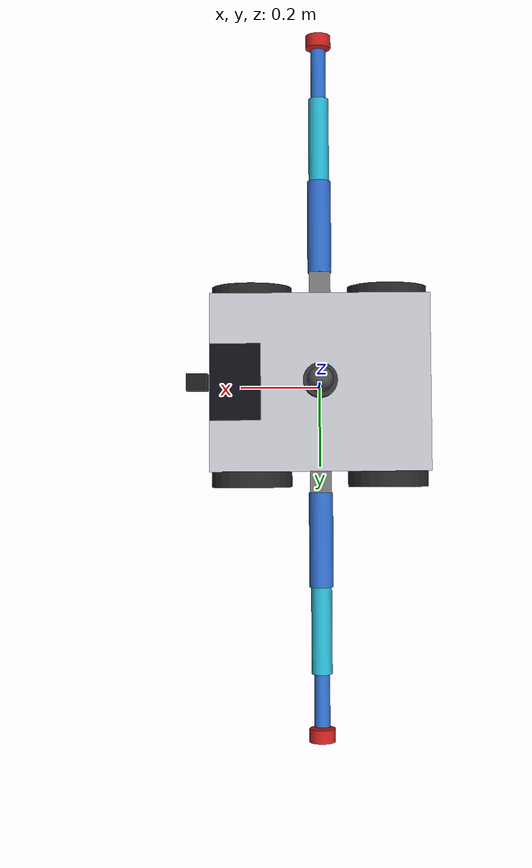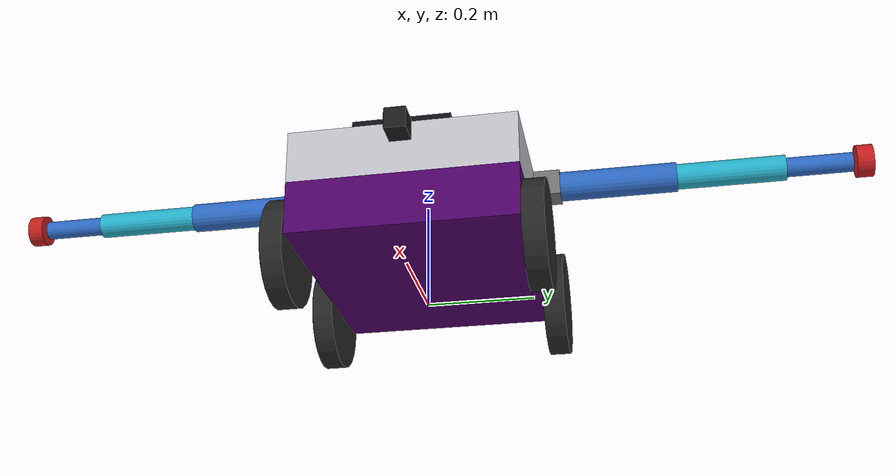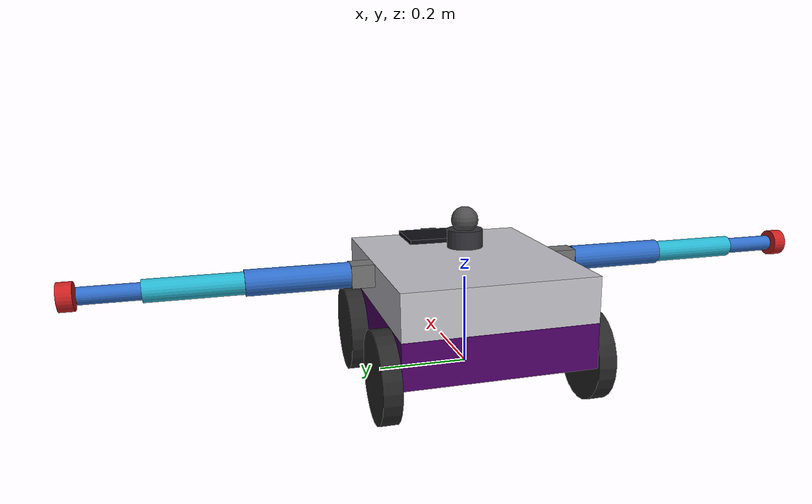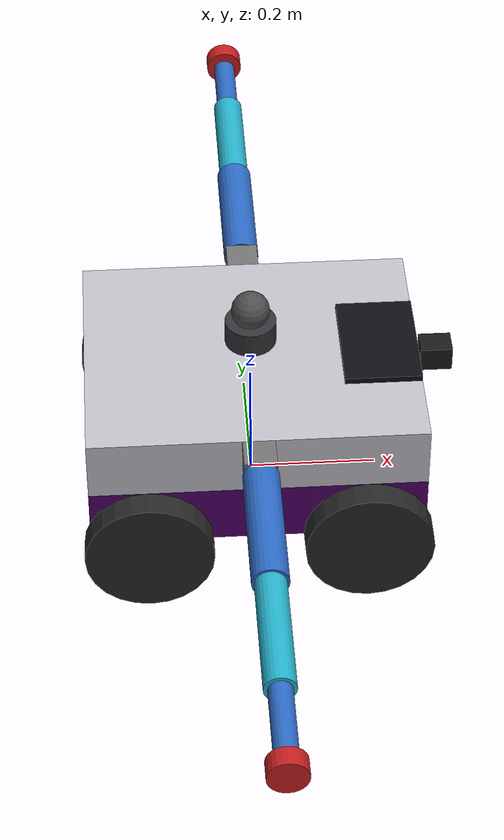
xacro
<?xml version='1.0'?>
<robot xmlns:xacro="http://www.ros.org/wiki/xacro" name="robot_model">

	<xacro:include filename="car_constants.xacro"/>
	<xacro:include filename="inertial_macros.xacro"/>
	<xacro:include filename="robot_chasis.xacro"/>
	<xacro:include filename="torso.xacro"/>
	<xacro:include filename="gazebo.xacro"/>
	<xacro:include filename="arms.xacro"/>
	<xacro:include filename="sensors.xacro"/>
	<xacro:include filename="controller.xacro"/>
	<xacro:robot_chassis/>
	<xacro:torso parent="chassis-link"/>
	<xacro:left_arm parent="torso_link"/>
	<xacro:right_arm parent="torso_link"/>
	<xacro:robot_sensors parent="torso_link"/>
	<xacro:robot_control/>
	<xacro:gazebo_extensions/>

</robot>

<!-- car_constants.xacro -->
<robot xmlns:xacro ="http://www.ros.org/wiki/xacro" >
	<xacro:property name="chassis_length" value="0.52" />
	<xacro:property name="chassis_width" value="0.42" />
	<xacro:property name="chassis_height" value="0.1" />
	<xacro:property name="chassis_mass" value="3.5" />

	<xacro:property name="wheel_radius" value="0.10" />
	<xacro:property name="wheel_width" value="0.04" />
	<xacro:property name="wheel_mass" value="0.8" />
	<xacro:property name="wheel_x_offset" value="0.17" />
	<xacro:property name="wheel_y_offset" value="0.23" />

	<xacro:property name="torso_length" value="0.52" />
	<xacro:property name="torso_width" value="0.42" />
	<xacro:property name="torso_height" value="0.1" />
	<xacro:property name="torso_mass" value="6.0" />
	<xacro:property name="torso_z_offset" value="${chassis_height / 2.0 + torso_height / 2.0}" />

	<xacro:property name="face_panel_length" value="0.01" />
	<xacro:property name="face_panel_width" value="0.18" />
	<xacro:property name="face_panel_height" value="0.12" />
	<xacro:property name="face_panel_mass" value="0.2" />
</robot>

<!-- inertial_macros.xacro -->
<robot xmlns:xacro="http://www.ros.org/wiki/xacro">

  <!-- Material densities in kg/m^3 -->
  <xacro:property name="steel_density" value="7850.0"/>
  <xacro:property name="aluminum_density" value="2700.0"/>
  <xacro:property name="plastic_density" value="1200.0"/>
  <xacro:property name="rubber_density" value="1100.0"/>

  <!-- Solid box inertial from density and box dimensions -->
  <xacro:macro name="box_inertial_from_density" params="l w h density origin_xyz:='0 0 0' origin_rpy:='0 0 0'">
    <xacro:property name="mass" value="${density * l * w * h}"/>
    <inertial>
      <origin xyz="${origin_xyz}" rpy="${origin_rpy}"/>
      <mass value="${mass}"/>
      <inertia
        ixx="${mass * (w*w + h*h) / 12.0}"
        ixy="0.0"
        ixz="0.0"
        iyy="${mass * (l*l + h*h) / 12.0}"
        iyz="0.0"
        izz="${mass * (l*l + w*w) / 12.0}"/>
    </inertial>
  </xacro:macro>

  <!-- Solid box inertial from an explicit mass and box dimensions -->
  <xacro:macro name="box_inertial_from_mass" params="l w h mass origin_xyz:='0 0 0' origin_rpy:='0 0 0'">
    <inertial>
      <origin xyz="${origin_xyz}" rpy="${origin_rpy}"/>
      <mass value="${mass}"/>
      <inertia
        ixx="${mass * (w*w + h*h) / 12.0}"
        ixy="0.0"
        ixz="0.0"
        iyy="${mass * (l*l + h*h) / 12.0}"
        iyz="0.0"
        izz="${mass * (l*l + w*w) / 12.0}"/>
    </inertial>
  </xacro:macro>

  <!-- Solid cylinder inertial from density and cylinder dimensions -->
  <xacro:macro name="cylinder_inertial_from_density" params="radius length density origin_xyz:='0 0 0' origin_rpy:='0 0 0'">
    <xacro:property name="mass" value="${density * 3.141592653589793 * radius * radius * length}"/>
    <inertial>
      <origin xyz="${origin_xyz}" rpy="${origin_rpy}"/>
      <mass value="${mass}"/>
      <inertia
        ixx="${mass * (3.0 * radius * radius + length * length) / 12.0}"
        ixy="0.0"
        ixz="0.0"
        iyy="${mass * (3.0 * radius * radius + length * length) / 12.0}"
        iyz="0.0"
        izz="${0.5 * mass * radius * radius}"/>
    </inertial>
  </xacro:macro>

  <!-- Solid cylinder inertial from an explicit mass and cylinder dimensions -->
  <xacro:macro name="cylinder_inertial_from_mass" params="radius length mass origin_xyz:='0 0 0' origin_rpy:='0 0 0'">
    <inertial>
      <origin xyz="${origin_xyz}" rpy="${origin_rpy}"/>
      <mass value="${mass}"/>
      <inertia
        ixx="${mass * (3.0 * radius * radius + length * length) / 12.0}"
        ixy="0.0"
        ixz="0.0"
        iyy="${mass * (3.0 * radius * radius + length * length) / 12.0}"
        iyz="0.0"
        izz="${0.5 * mass * radius * radius}"/>
    </inertial>
  </xacro:macro>

</robot>

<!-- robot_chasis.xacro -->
<robot xmlns:xacro ="http://www.ros.org/wiki/xacro" name="robot_chasis">
	<xacro:macro name="drive_wheel" params="name x y">
		<link name="${name}_link">
			<visual>
				<origin xyz="0 0 0" rpy="1.5708 0 0" />
				<geometry>
					<cylinder radius="${wheel_radius}" length="${wheel_width}" />
				</geometry>
				<material name="dark_grey">
					<color rgba="0.15 0.15 0.15 1.0"/>
				</material>
			</visual>
			<collision>
				<origin xyz="0 0 0" rpy="1.5708 0 0" />
				<geometry>
					<cylinder radius="${wheel_radius}" length="${wheel_width}" />
				</geometry>
			</collision>
			<xacro:cylinder_inertial_from_mass
				radius="${wheel_radius}"
				length="${wheel_width}"
				mass="${wheel_mass}"
				origin_xyz="0 0 0"
				origin_rpy="1.5708 0 0" />
		</link>

		<joint name="${name}_joint" type="continuous">
			<parent link="chassis-link"/>
			<child link="${name}_link"/>
			<origin xyz="${x} ${y} ${-chassis_height / 2.0}" rpy="0 0 0" />
			<axis xyz="0 1 0"/>
			<dynamics damping="0.2" friction="0.1"/>
			<limit effort="20.0" velocity="15.0"/>
		</joint>
	</xacro:macro>

	<xacro:macro name="robot_chassis" params="">
		<link name="base_link"/>

		<link name="chassis-link">
			<visual>
				<origin xyz="0 0 0" rpy="0 0 0" />
				<geometry>
					<box size="${chassis_length} ${chassis_width} ${chassis_height}" />
				</geometry>
				<material name="brown">
					<color rgba="0.3 0 0.4 1"/>
				</material>
			</visual>
			<collision>
				<origin xyz="0 0 0" rpy="0 0 0" />
				<geometry>
					<box size="${chassis_length} ${chassis_width} ${chassis_height}" />
				</geometry>
			</collision>
			<xacro:box_inertial_from_mass
				l="${chassis_length}"
				w="${chassis_width}"
				h="${chassis_height}"
				mass="${chassis_mass}" />
		</link>

		<joint name="joint-base-chassis" type="fixed">
			<parent link="base_link"/>
			<child link="chassis-link"/>
			<origin xyz="0 0 ${wheel_radius}" rpy="0 0 0" />
		</joint>

		<xacro:drive_wheel name="front_left_wheel"  x="${ wheel_x_offset}" y="${ wheel_y_offset}"/>
		<xacro:drive_wheel name="front_right_wheel" x="${ wheel_x_offset}" y="${-wheel_y_offset}"/>
		<xacro:drive_wheel name="rear_left_wheel"   x="${-wheel_x_offset}" y="${ wheel_y_offset}"/>
		<xacro:drive_wheel name="rear_right_wheel"  x="${-wheel_x_offset}" y="${-wheel_y_offset}"/>
	</xacro:macro>
</robot>

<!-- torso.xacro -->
<robot xmlns:xacro="http://www.ros.org/wiki/xacro">

	<xacro:macro name="torso" params="parent">
		<link name="torso_link">
			<visual>
				<origin xyz="0 0 0" rpy="0 0 0" />
				<geometry>
					<box size="${torso_length} ${torso_width} ${torso_height}" />
				</geometry>
				<material name="silver">
					<color rgba="0.75 0.75 0.78 1.0"/>
				</material>
			</visual>
			<collision>
				<origin xyz="0 0 0" rpy="0 0 0" />
				<geometry>
					<box size="${torso_length} ${torso_width} ${torso_height}" />
				</geometry>
			</collision>
			<xacro:box_inertial_from_mass
				l="${torso_length}"
				w="${torso_width}"
				h="${torso_height}"
				mass="${torso_mass}" />
		</link>

		<joint name="torso_joint" type="fixed">
			<parent link="${parent}"/>
			<child link="torso_link"/>
			<origin xyz="0 0 ${torso_z_offset}" rpy="0 0 0" />
		</joint>

		<link name="face_panel_link">
			<visual>
				<origin xyz="${torso_length / 2.0 - face_panel_height / 2.0} 0 ${torso_height / 2.0 + face_panel_length / 2.0}" rpy="0 0 0" />
				<geometry>
					<box size="${face_panel_height} ${face_panel_width} ${face_panel_length}" />
				</geometry>
				<material name="face_black">
					<color rgba="0.05 0.05 0.08 1.0"/>
				</material>
			</visual>
			<collision>
				<origin xyz="${torso_length / 2.0 - face_panel_height / 2.0} 0 ${torso_height / 2.0 + face_panel_length / 2.0}" rpy="0 0 0" />
				<geometry>
					<box size="${face_panel_height} ${face_panel_width} ${face_panel_length}" />
				</geometry>
			</collision>
			<xacro:box_inertial_from_mass
				l="${face_panel_height}"
				w="${face_panel_width}"
				h="${face_panel_length}"
				mass="${face_panel_mass}"
				origin_xyz="${torso_length / 2.0 - face_panel_height / 2.0} 0 ${torso_height / 2.0 + face_panel_length / 2.0}" />
		</link>

		<joint name="face_panel_joint" type="fixed">
			<parent link="torso_link"/>
			<child link="face_panel_link"/>
			<origin xyz="0 0 0" rpy="0 0 0" />
		</joint>
	</xacro:macro>

</robot>

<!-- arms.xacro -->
<robot xmlns:xacro="http://www.ros.org/wiki/xacro" name="pickup_arm">

	<xacro:macro name="arm_mount" params="name parent x y z yaw">
		<link name="${name}_mount_link">
			<visual>
				<origin xyz="0 0 0" rpy="0 0 0" />
				<geometry>
					<box size="0.05 0.05 0.05" />
				</geometry>
				<material name="mount_gray">
					<color rgba="0.45 0.45 0.45 1.0"/>
				</material>
			</visual>
			<collision>
				<origin xyz="0 0 0" rpy="0 0 0" />
				<geometry>
					<box size="0.05 0.05 0.05" />
				</geometry>
			</collision>
			<xacro:box_inertial_from_mass
				l="0.05"
				w="0.05"
				h="0.05"
				mass="0.35" />
		</link>

		<joint name="${name}_mount_joint" type="fixed">
			<parent link="${parent}"/>
			<child link="${name}_mount_link"/>
			<origin xyz="${x} ${y} ${z}" rpy="0 0 ${yaw}" />
		</joint>
	</xacro:macro>

	<xacro:macro name="three_dof_arm" params="prefix parent mount_x mount_y mount_z mount_yaw shoulder_axis_y">
		<xacro:arm_mount name="${prefix}" parent="${parent}" x="${mount_x}" y="${mount_y}" z="${mount_z}" yaw="${mount_yaw}"/>

		<link name="${prefix}_upper_arm_link">
			<visual>
				<origin xyz="0.11 0 0" rpy="0 1.5708 0" />
				<geometry>
					<cylinder radius="0.028" length="0.22" />
				</geometry>
				<material name="arm_blue">
					<color rgba="0.18 0.42 0.78 1.0"/>
				</material>
			</visual>
			<collision>
				<origin xyz="0.11 0 0" rpy="0 1.5708 0" />
				<geometry>
					<cylinder radius="0.028" length="0.22" />
				</geometry>
			</collision>
			<xacro:cylinder_inertial_from_mass
				radius="0.028"
				length="0.22"
				mass="1.1"
				origin_xyz="0.11 0 0"
				origin_rpy="0 1.5708 0" />
		</link>

		<joint name="${prefix}_shoulder_joint" type="revolute">
			<parent link="${prefix}_mount_link"/>
			<child link="${prefix}_upper_arm_link"/>
			<origin xyz="0.025 0 0" rpy="0 0 0" />
			<axis xyz="0 ${shoulder_axis_y} 0"/>
			<limit lower="-1.57" upper="1.57" effort="22.0" velocity="1.5"/>
			<dynamics damping="0.5" friction="0.12"/>
		</joint>

		<link name="${prefix}_forearm_link">
			<visual>
				<origin xyz="0.10 0 0" rpy="0 1.5708 0" />
				<geometry>
					<cylinder radius="0.024" length="0.20" />
				</geometry>
				<material name="arm_cyan">
					<color rgba="0.15 0.7 0.8 1.0"/>
				</material>
			</visual>
			<collision>
				<origin xyz="0.10 0 0" rpy="0 1.5708 0" />
				<geometry>
					<cylinder radius="0.024" length="0.20" />
				</geometry>
			</collision>
			<xacro:cylinder_inertial_from_mass
				radius="0.024"
				length="0.20"
				mass="0.8"
				origin_xyz="0.10 0 0"
				origin_rpy="0 1.5708 0" />
		</link>

		<joint name="${prefix}_elbow_joint" type="revolute">
			<parent link="${prefix}_upper_arm_link"/>
			<child link="${prefix}_forearm_link"/>
			<origin xyz="0.22 0 0" rpy="0 0 0" />
			<axis xyz="0 ${shoulder_axis_y} 0"/>
			<limit lower="-2.355" upper="2.355" effort="18.0" velocity="1.6"/>
			<dynamics damping="0.4" friction="0.10"/>
		</joint>

		<link name="${prefix}_wrist_link">
			<visual>
				<origin xyz="0.06 0 0" rpy="0 1.5708 0" />
				<geometry>
					<cylinder radius="0.018" length="0.12" />
				</geometry>
				<material name="arm_blue"/>
			</visual>
			<collision>
				<origin xyz="0.06 0 0" rpy="0 1.5708 0" />
				<geometry>
					<cylinder radius="0.018" length="0.12" />
				</geometry>
			</collision>
			<xacro:cylinder_inertial_from_mass
				radius="0.018"
				length="0.12"
				mass="0.35"
				origin_xyz="0.06 0 0"
				origin_rpy="0 1.5708 0" />
		</link>

		<joint name="${prefix}_wrist_joint" type="revolute">
			<parent link="${prefix}_forearm_link"/>
			<child link="${prefix}_wrist_link"/>
			<origin xyz="0.20 0 0" rpy="0 0 0" />
			<axis xyz="0 ${shoulder_axis_y} 0"/>
			<limit lower="-1.57" upper="1.57" effort="10.0" velocity="2.0"/>
			<dynamics damping="0.25" friction="0.08"/>
		</joint>

		<link name="${prefix}_magnet_link">
			<visual>
				<origin xyz="0.02 0 0" rpy="0 1.5708 0" />
				<geometry>
					<cylinder radius="0.03" length="0.03" />
				</geometry>
				<material name="magnet_red">
					<color rgba="0.78 0.12 0.12 1.0"/>
				</material>
			</visual>
			<collision>
				<origin xyz="0.02 0 0" rpy="0 1.5708 0" />
				<geometry>
					<cylinder radius="0.03" length="0.03" />
				</geometry>
			</collision>
			<xacro:cylinder_inertial_from_mass
				radius="0.03"
				length="0.03"
				mass="0.15"
				origin_xyz="0.02 0 0"
				origin_rpy="0 1.5708 0" />
		</link>

		<joint name="${prefix}_magnet_joint" type="fixed">
			<parent link="${prefix}_wrist_link"/>
			<child link="${prefix}_magnet_link"/>
			<origin xyz="0.12 0 0" rpy="0 0 0" />
		</joint>
	</xacro:macro>

	<xacro:macro name="left_arm" params="parent">
		<xacro:three_dof_arm
			prefix="left_arm"
			parent="${parent}"
			mount_x="0.0"
			mount_y="${torso_width / 2.0 + 0.025}"
			mount_z="${torso_height / 2.0 -0.025}"
			mount_yaw="1.5708"
			shoulder_axis_y="1" />
	</xacro:macro>

	<xacro:macro name="right_arm" params="parent">
		<xacro:three_dof_arm
			prefix="right_arm"
			parent="${parent}"
			mount_x="0.0"
			mount_y="${-(torso_width / 2.0 + 0.025)}"
			mount_z="${torso_height / 2.0 -0.025}"
			mount_yaw="-1.5708"
			shoulder_axis_y="-1" />
	</xacro:macro>

</robot>

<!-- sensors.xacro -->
<robot xmlns:xacro="http://www.ros.org/wiki/xacro" name="robot_sensors">

	<xacro:macro name="robot_sensors" params="parent">
		<link name="camera_link">
			<visual>
				<origin xyz="0 0 0" rpy="0 0 0" />
				<geometry>
					<box size="0.05 0.04 0.04" />
				</geometry>
				<material name="camera_black">
					<color rgba="0.1 0.1 0.1 1.0"/>
				</material>
			</visual>
			<collision>
				<origin xyz="0 0 0" rpy="0 0 0" />
				<geometry>
					<box size="0.05 0.04 0.04" />
				</geometry>
			</collision>
			<xacro:box_inertial_from_mass
				l="0.05"
				w="0.04"
				h="0.04"
				mass="0.15" />
		</link>

		<joint name="camera_joint" type="fixed">
			<parent link="${parent}"/>
			<child link="camera_link"/>
			<origin xyz="${torso_length / 2.0 + 0.03} 0 0.03" rpy="0 0 0" />
		</joint>

		<link name="lidar_link">
			<visual>
				<origin xyz="0 0 0" rpy="0 0 0" />
				<geometry>
					<cylinder radius="0.04" length="0.04" />
				</geometry>
				<material name="lidar_dark">
					<color rgba="0.2 0.2 0.22 1.0"/>
				</material>
			</visual>
			<collision>
				<origin xyz="0 0 0" rpy="0 0 0" />
				<geometry>
					<cylinder radius="0.04" length="0.04" />
				</geometry>
			</collision>
			<xacro:cylinder_inertial_from_mass
				radius="0.04"
				length="0.04"
				mass="0.2" />
		</link>

		<joint name="lidar_joint" type="fixed">
			<parent link="${parent}"/>
			<child link="lidar_link"/>
			<origin xyz="0 0 ${torso_height / 2.0 + 0.04}" rpy="0 0 0" />
		</joint>
		<link name="imu_link">
			<visual>
				<origin xyz="0 0 0" rpy="0 0 0" />
				<geometry>
					<sphere radius="0.03" />
				</geometry>
				<material name="imu_gray">
					<color rgba="0.3 0.3 0.3 1.0"/>
				</material>
			</visual>
			<collision>
				<origin xyz="0 0 0" rpy="0 0 0" />
				<geometry>
					<sphere radius="0.03" />
				</geometry>
			</collision>
			<xacro:box_inertial_from_mass
				l="0.06"
				w="0.06"
				h="0.06"
				mass="0.1" />
		</link>
		<joint name="imu_joint" type="fixed">
			<parent link="${parent}"/>
			<child link="imu_link"/>
			<origin xyz="0 0 ${chassis_height / 2.0 + 0.08}" rpy="0 0 0" />
		</joint>
	</xacro:macro>

</robot>
